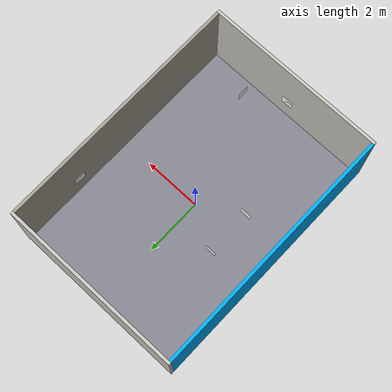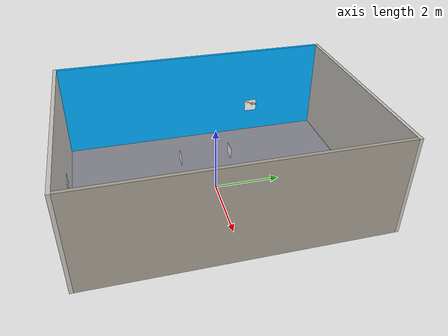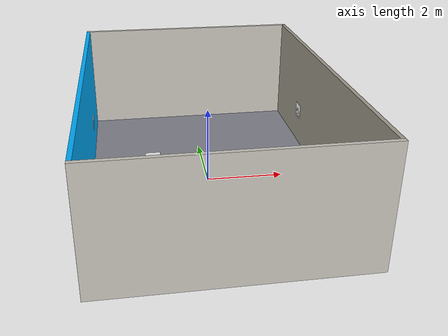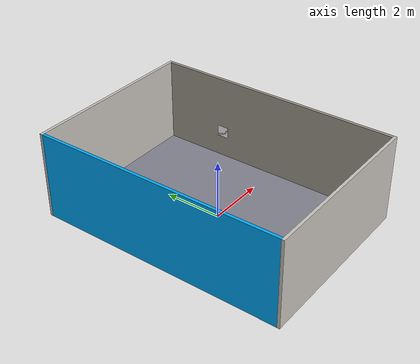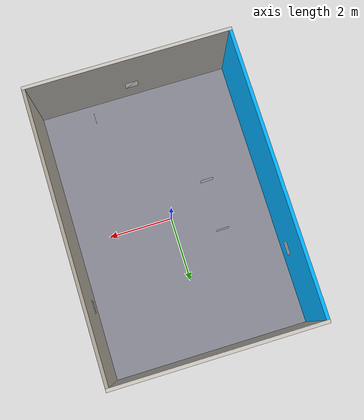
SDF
<sdf version="1.7">
 <world name="037_aruco">
  <plugin filename="gz-sim-physics-system" name="gz::sim::systems::Physics"/>
  <plugin filename="gz-sim-user-commands-system" name="gz::sim::systems::UserCommands"/>
  <plugin filename="gz-sim-scene-broadcaster-system" name="gz::sim::systems::SceneBroadcaster"/>
  <plugin filename="gz-sim-sensors-system" name="gz::sim::systems::Sensors">
   <render_engine>ogre</render_engine>
  </plugin>
  <plugin filename="gz-sim-imu-system" name="gz::sim::systems::Imu"/>
  <include><uri>package://jackal_helper/worlds/037/037_base.sdf</uri></include>
  <include><uri>package://jackal_helper/worlds/037/037_aruco_default.sdf</uri></include>
  <include><uri>package://jackal_helper/worlds/037/037_aruco_base.sdf</uri></include>
  <light name="sun_light" type="point">
   <pose>0 0 10 0 0 0</pose>
   <diffuse>1 1 1 1</diffuse>
   <specular>0.2 0.2 0.2 1</specular>
   <attenuation>
    <range>1000</range>
    <constant>0.9</constant>
    <linear>0.01</linear>
    <quadratic>0.001</quadratic>
   </attenuation>
   <direction>-0.5 0.1 -1</direction>
  </light>
  <physics type="ode">
   <gravity>0 0 -9.81</gravity>
   <max_step_size>0.001</max_step_size>
   <real_time_factor>1</real_time_factor>
  </physics>
  <model name="aruco_0">
   <static>true</static>
   <pose>-2.99 2.0 1.0 0 1.5708 0</pose>
   <link name="link">
    <visual name="visual">
     <geometry><plane><normal>0 0 1</normal><size>0.4 0.4</size></plane></geometry>
     <material>
      <diffuse>1 1 1 1</diffuse>
      <pbr><metal><albedo_map>package://jackal_helper/materials/4x4_1000-0.png</albedo_map></metal></pbr>
     </material>
    </visual>
   </link>
  </model>
  <model name="aruco_1">
   <static>true</static>
   <pose>2.99 2.0 1.0 0 1.5708 0</pose>
   <link name="link">
    <visual name="visual">
     <geometry><plane><normal>0 0 -1</normal><size>0.4 0.4</size></plane></geometry>
     <material>
      <diffuse>1 1 1 1</diffuse>
      <pbr><metal><albedo_map>package://jackal_helper/materials/4x4_1000-1.png</albedo_map></metal></pbr>
     </material>
    </visual>
   </link>
  </model>
  <model name="aruco_2">
   <static>true</static>
   <pose>0 -4.24 1.0 0 1.5708 1.5708</pose>
   <link name="link">
    <visual name="visual">
     <geometry><plane><normal>0 0 1</normal><size>0.4 0.4</size></plane></geometry>
     <material>
      <diffuse>1 1 1 1</diffuse>
      <pbr><metal><albedo_map>package://jackal_helper/materials/4x4_1000-2.png</albedo_map></metal></pbr>
     </material>
    </visual>
   </link>
  </model>
 </world>
</sdf>

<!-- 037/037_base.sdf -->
<sdf version="1.7">
    <model name="037_base">

        <!-- ROOM DIMENSIONS -->
        <!-- Width  (X): 6.0 m  -->
        <!-- Depth  (Y): 8.5 m -->
        <!-- Height (Z): 3.0 m -->
        <static>true</static>

        <!-- Ground Plane              -->
        <link name="ground">
        <pose>0 0 0 0 0 0</pose>

        <collision name="ground_collision">
            <geometry>
            <box>
                <size>6 8.5 0.1</size>
            </box>
            </geometry>
        </collision>

        <visual name="ground_visual">
            <geometry>
            <box>
                <size>6 8.5 0.1</size>
            </box>
            </geometry>

            <material>
            <ambient>0.5176 0.5176 0.5647 1</ambient>
            <diffuse>0.5176 0.5176 0.5647 1</diffuse>
            <specular>0.1 0.1 0.1 1</specular>
            </material>
        </visual>
        </link>

        <!-- Left Wall (-X)            -->
        <!-- Color: #00AFFFFF          -->
        <link name="left_wall">
        <pose>-3.05 0 1.5 0 0 0</pose>

        <collision name="left_wall_collision">
            <geometry>
            <box>
                <size>0.1 8.5 3</size>
            </box>
            </geometry>
        </collision>

        <visual name="left_wall_visual">
            <geometry>
            <box>
                <size>0.1 8.5 3</size>
            </box>
            </geometry>

            <material>
            <ambient>0.0 0.6863 1.0 1</ambient>
            <diffuse>0.0 0.6863 1.0 1</diffuse>
            <specular>0.1 0.1 0.1 1</specular>
            </material>
        </visual>
        </link>

        <!-- Right Wall (+X)           -->
        <!-- Color: #A69F92FF          -->
        <link name="right_wall">
        <pose>3.05 0 1.5 0 0 0</pose>

        <collision name="right_wall_collision">
            <geometry>
            <box>
                <size>0.1 8.5 3</size>
            </box>
            </geometry>
        </collision>

        <visual name="right_wall_visual">
            <geometry>
            <box>
                <size>0.1 8.5 3</size>
            </box>
            </geometry>

            <material>
            <ambient>0.6510 0.6235 0.5725 1</ambient>
            <diffuse>0.6510 0.6235 0.5725 1</diffuse>
            <specular>0.1 0.1 0.1 1</specular>
            </material>
        </visual>
        </link>

        <!-- Front Wall (+Y)           -->
        <!-- Back Wall (-Y)            -->
        <!-- Color: #C9C5BDFF          -->

        <link name="front_wall">
        <pose>0 4.3 1.5 0 0 0</pose>

        <collision name="front_wall_collision">
            <geometry>
            <box>
                <size>6.2 0.1 3</size>
            </box>
            </geometry>
        </collision>

        <visual name="front_wall_visual">
            <geometry>
            <box>
                <size>6.2 0.1 3</size>
            </box>
            </geometry>

            <material>
            <ambient>0.7882 0.7725 0.7412 1</ambient>
            <diffuse>0.7882 0.7725 0.7412 1</diffuse>
            <specular>0.1 0.1 0.1 1</specular>
            </material>
        </visual>
        </link>

        <link name="back_wall">
        <pose>0 -4.3 1.5 0 0 0</pose>

        <collision name="back_wall_collision">
            <geometry>
            <box>
                <size>6.2 0.1 3</size>
            </box>
            </geometry>
        </collision>

        <visual name="back_wall_visual">
            <geometry>
            <box>
                <size>6.2 0.1 3</size>
            </box>
            </geometry>

            <material>
            <ambient>0.7882 0.7725 0.7412 1</ambient>
            <diffuse>0.7882 0.7725 0.7412 1</diffuse>
            <specular>0.1 0.1 0.1 1</specular>
            </material>
        </visual>
        </link>
    </model>
</sdf>

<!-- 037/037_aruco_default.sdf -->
<sdf version="1.7">
<model name="aruco_default">
    <!-- ARUCO 0 -->
    <model name="aruco_0">
      <static>true</static>
      <pose>-2.99 2.0 1.0 1.5708 0 0</pose>
      <link name="link">
        <visual name="visual">
          <geometry>
            <plane><normal>1 0 0</normal><size>0.4 0.4</size></plane>
          </geometry>
          <material>
            <diffuse>1 1 1 1</diffuse>
              <pbr>
                <metal>
                <albedo_map>package://jackal_helper/materials/4x4_1000-0.png</albedo_map>
                </metal>
              </pbr>
          </material>
        </visual>
      </link>
    </model>

    <!-- ARUCO 1 -->
    <model name="aruco_1">
      <static>true</static>
      <pose>2.99 2.0 1.0 1.5708 0 0</pose>
      <link name="link">
        <visual name="visual">
          <geometry>
            <plane><normal>-1 0 0</normal><size>0.4 0.4</size></plane>
          </geometry>
          <material>
            <diffuse>1 1 1 1</diffuse>
              <pbr>
                <metal>
                <albedo_map>package://jackal_helper/materials/4x4_1000-1.png</albedo_map>
                </metal>
              </pbr>
          </material>
        </visual>
      </link>
    </model>

    <!-- ARUCO 2 -->
    <model name="aruco_2">
      <static>true</static>
      <pose>0 -4.24 1.0 0 -3.1415 0</pose>
      <link name="link">
        <visual name="visual">
          <geometry>
            <plane><normal>0 1 0</normal><size>0.4 0.4</size></plane>
          </geometry>
          <material>
            <diffuse>1 1 1 1</diffuse>
              <pbr>
                <metal>
                <albedo_map>package://jackal_helper/materials/4x4_1000-2.png</albedo_map>
                </metal>
              </pbr>
          </material>
        </visual>
      </link>
    </model>
</model>
</sdf>

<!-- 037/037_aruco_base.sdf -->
<sdf version="1.7">
<model name="aruco_base">
    <!-- ARUCO 3 -->
    <model name="aruco_3">
      <static>true</static>
      <pose>1.39 -3.75  0.3 1.5708 0 0</pose>
      <link name="link">
        <visual name="visual">
          <geometry>
            <plane><normal>-1 0 0</normal><size>0.4 0.4</size></plane>
          </geometry>
          <material>
            <diffuse>1 1 1 1</diffuse>
              <pbr>
                <metal>
                <albedo_map>package://jackal_helper/materials/4x4_1000-3.png</albedo_map>
                </metal>
              </pbr>
          </material>
        </visual>
      </link>
    </model>

    <!-- ARUCO 4 -->
    <model name="aruco_4">
      <static>true</static>
      <pose>-1.40 -0.81 0.3 0 0 0</pose>
      <link name="link">
        <visual name="visual">
          <geometry>
            <plane><normal>0 -1 0</normal><size>0.4 0.4</size></plane>
          </geometry>
          <material>
            <diffuse>1 1 1 1</diffuse>
              <pbr>
                <metal>
                <albedo_map>package://jackal_helper/materials/4x4_1000-4.png</albedo_map>
                </metal>
              </pbr>
          </material>
        </visual>
      </link>
    </model>

    <!-- ARUCO 5 -->
    <model name="aruco_5">
      <static>true</static>
      <pose>-1.40 0.81 0.3 0 -3.1415 0</pose>
      <link name="link">
        <visual name="visual">
          <geometry>
            <plane><normal>0 1 0</normal><size>0.4 0.4</size></plane>
          </geometry>
          <material>
            <diffuse>1 1 1 1</diffuse>
              <pbr>
                <metal>
                <albedo_map>package://jackal_helper/materials/4x4_1000-5.png</albedo_map>
                </metal>
              </pbr>
          </material>
        </visual>
      </link>
    </model>
</model>
</sdf>
